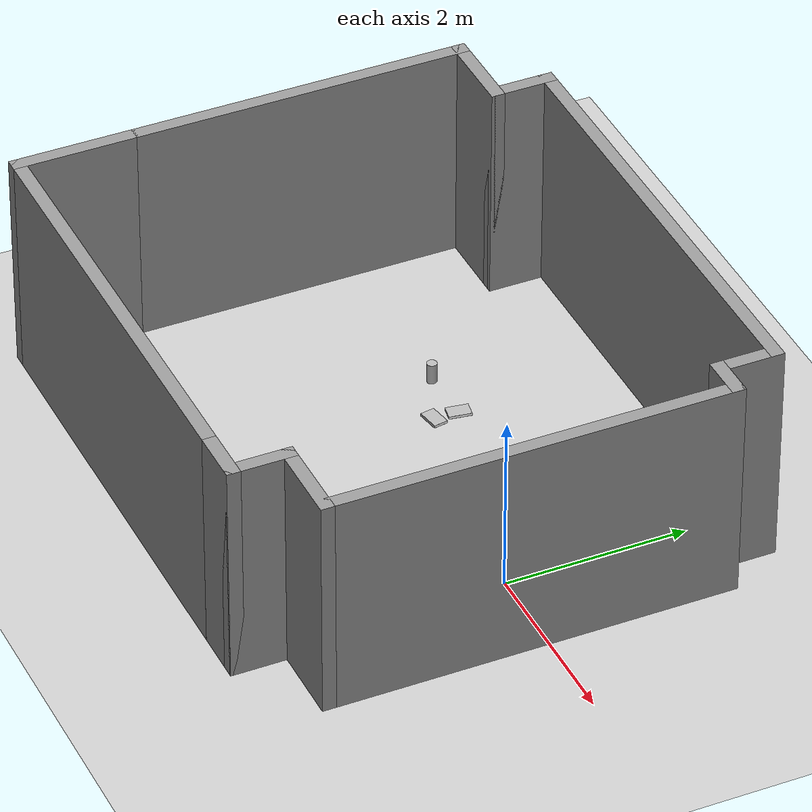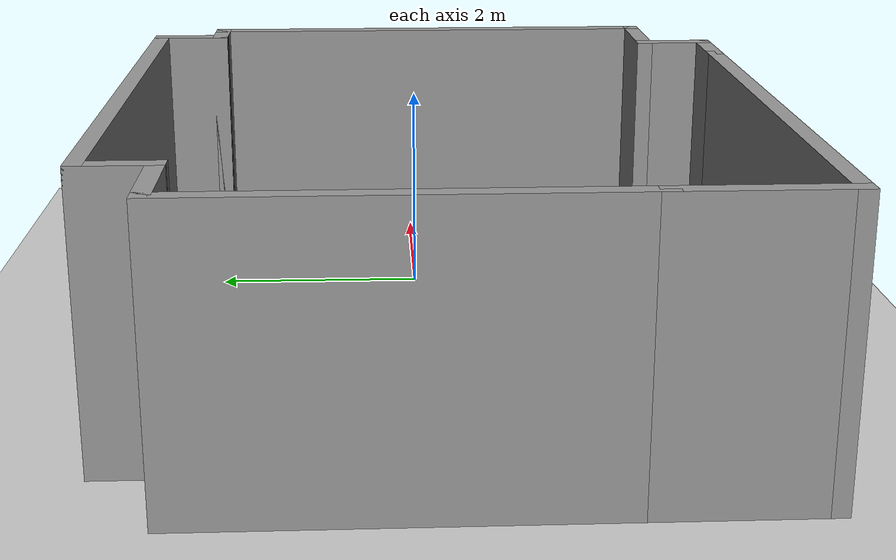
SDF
<sdf version="1.6">
 <world name="default">
  <light name="sun" type="directional">
   <pose>0 0 10 0 -0 0</pose>
   <diffuse>0.8 0.8 0.8 1</diffuse>
   <specular>0.2 0.2 0.2 1</specular>
   <attenuation>
    <range>1000</range>
    <constant>0.9</constant>
    <linear>0.01</linear>
    <quadratic>0.001</quadratic>
   </attenuation>
   <direction>-0.5 0.1 -0.9</direction>
  </light>
  <model name="ground_plane">
   <static>1</static>
   <link name="link">
    <collision name="collision">
     <geometry><plane><normal>0 0 1</normal><size>100 100</size></plane></geometry>
     <surface><friction><ode><mu>100</mu><mu2>50</mu2></ode></friction></surface>
    </collision>
    <visual name="visual">
     <cast_shadows>0</cast_shadows>
     <geometry><plane><normal>0 0 1</normal><size>100 100</size></plane></geometry>
     <material>
      <script><uri>file://media/materials/scripts/gazebo.material</uri><name>Gazebo/Grey</name></script>
     </material>
    </visual>
   </link>
  </model>
  <gravity>0 0 -10</gravity>
  <magnetic_field>6e-06 2.3e-05 -4.2e-05</magnetic_field>
  <atmosphere type="adiabatic"/>
  <physics name="default_physics" default="0" type="ode">
   <max_step_size>0.001</max_step_size>
   <real_time_factor>1</real_time_factor>
   <real_time_update_rate>1000</real_time_update_rate>
  </physics>
  <scene><ambient>0.4 0.4 0.4 1</ambient><background>0.7 0.7 0.7 1</background><shadows>1</shadows></scene>
  <audio><device>default</device></audio>
  <spherical_coordinates>
   <surface_model>EARTH_WGS84</surface_model>
   <latitude_deg>0</latitude_deg>
   <longitude_deg>0</longitude_deg>
   <elevation>0</elevation>
   <heading_deg>0</heading_deg>
  </spherical_coordinates>
  <model name="book_2">
   <link name="cover">
    <pose>0 -0.000108 0.015405 0 -0 0</pose>
    <visual name="visual">
     <geometry><box><size>0.245 0.16 0.03</size></box></geometry>
     <material>
      <script>
       <uri>model://book_2/materials/scripts</uri>
       <uri>model://book_2/materials/textures</uri>
       <name>book_2</name>
      </script>
     </material>
    </visual>
    <collision name="collision"><geometry><box><size>0.245 0.16 0.03</size></box></geometry></collision>
   </link>
   <link name="page">
    <pose>0 0.000608 0.015405 0 -0 0</pose>
    <visual name="visual">
     <geometry><box><size>0.24502 0.15862 0.028</size></box></geometry>
     <material>
      <lighting>1</lighting>
      <ambient>1 1 1 1</ambient>
      <diffuse>1 1 1 1</diffuse>
      <specular>0.01 0.01 0.01 1</specular>
      <emissive>0 0 0 1</emissive>
      <shader type="vertex"><normal_map>__default__</normal_map></shader>
     </material>
    </visual>
    <collision name="collision"><geometry><box><size>0.245 0.16 0.03</size></box></geometry></collision>
   </link>
   <static>1</static>
   <pose>-1.97657 0.410734 0.643929 -3.13995 -0.014217 1.40083</pose>
  </model>
  <model name="book_16">
   <link name="cover">
    <pose>0 -0.000108 0.015405 0 -0 0</pose>
    <visual name="visual">
     <geometry><box><size>0.245 0.16 0.03</size></box></geometry>
     <material>
      <script>
       <uri>model://book_16/materials/scripts</uri>
       <uri>model://book_16/materials/textures</uri>
       <name>book_16</name>
      </script>
     </material>
    </visual>
    <collision name="collision"><geometry><box><size>0.245 0.16 0.03</size></box></geometry></collision>
   </link>
   <link name="page">
    <pose>0 0.000608 0.015405 0 -0 0</pose>
    <visual name="visual">
     <geometry><box><size>0.24502 0.15862 0.028</size></box></geometry>
     <material>
      <lighting>1</lighting>
      <ambient>1 1 1 1</ambient>
      <diffuse>1 1 1 1</diffuse>
      <specular>0.01 0.01 0.01 1</specular>
      <emissive>0 0 0 1</emissive>
      <shader type="vertex"><normal_map>__default__</normal_map></shader>
     </material>
    </visual>
    <collision name="collision"><geometry><box><size>0.245 0.16 0.03</size></box></geometry></collision>
   </link>
   <static>1</static>
   <pose>-1.97944 0.140244 0.612635 -0.018982 0.003466 0.180604</pose>
  </model>
  <model name="beer">
   <link name="link">
    <pose>0 0 0.115 0 -0 0</pose>
    <inertial>
     <mass>0.39</mass>
     <inertia><ixx>0.00058</ixx><ixy>0</ixy><ixz>0</ixz><iyy>0.00058</iyy><iyz>0</iyz><izz>0.00019</izz></inertia>
    </inertial>
    <collision name="collision">
     <geometry><cylinder><radius>0.055</radius><length>0.23</length></cylinder></geometry>
    </collision>
    <visual name="visual">
     <geometry><cylinder><radius>0.055</radius><length>0.23</length></cylinder></geometry>
     <material>
      <script>
       <uri>model://beer/materials/scripts</uri>
       <uri>model://beer/materials/textures</uri>
       <name>Beer/Diffuse</name>
      </script>
     </material>
    </visual>
   </link>
   <pose>-2.56829 0.387122 0.610694 2e-05 6e-06 0.015303</pose>
  </model>
  <model name="Untitled">
   <pose>-2.20645 -0.180442 0 0 -0 0</pose>
   <link name="Wall_10">
    <collision name="Wall_10_Collision">
     <geometry><box><size>5.25 0.15 2.5</size></box></geometry>
     <pose>0 0 1.25 0 -0 0</pose>
    </collision>
    <visual name="Wall_10_Visual">
     <pose>0 0 1.25 0 -0 0</pose>
     <geometry><box><size>5.25 0.15 2.5</size></box></geometry>
     <material>
      <script><uri>file://media/materials/scripts/gazebo.material</uri><name>Gazebo/Grey</name></script>
      <ambient>1 1 1 1</ambient>
     </material>
     <meta><layer>0</layer></meta>
    </visual>
    <pose>0.25 2.775 0 0 -0 0</pose>
   </link>
   <link name="Wall_12">
    <collision name="Wall_12_Collision">
     <geometry><box><size>0.75 0.15 2.5</size></box></geometry>
     <pose>0 0 1.25 0 -0 0</pose>
    </collision>
    <visual name="Wall_12_Visual">
     <pose>0 0 1.25 0 -0 0</pose>
     <geometry><box><size>0.75 0.15 2.5</size></box></geometry>
     <material>
      <script><uri>file://media/materials/scripts/gazebo.material</uri><name>Gazebo/Grey</name></script>
      <ambient>1 1 1 1</ambient>
     </material>
     <meta><layer>0</layer></meta>
    </visual>
    <pose>2.8 2.475 0 0 -0 -1.5708</pose>
   </link>
   <link name="Wall_13">
    <collision name="Wall_13_Collision">
     <geometry><box><size>0.5 0.15 2.5</size></box></geometry>
     <pose>0 0 1.25 0 -0 0</pose>
    </collision>
    <visual name="Wall_13_Visual">
     <pose>0 0 1.25 0 -0 0</pose>
     <geometry><box><size>0.5 0.15 2.5</size></box></geometry>
     <material>
      <script><uri>file://media/materials/scripts/gazebo.material</uri><name>Gazebo/Grey</name></script>
      <ambient>1 1 1 1</ambient>
     </material>
     <meta><layer>0</layer></meta>
    </visual>
    <pose>2.975 2.175 0 0 -0 0</pose>
   </link>
   <link name="Wall_14">
    <collision name="Wall_14_Collision">
     <geometry><box><size>4.5 0.15 2.5</size></box></geometry>
     <pose>0 0 1.25 0 -0 0</pose>
    </collision>
    <visual name="Wall_14_Visual">
     <pose>0 0 1.25 0 -0 0</pose>
     <geometry><box><size>4.5 0.15 2.5</size></box></geometry>
     <material>
      <script><uri>file://media/materials/scripts/gazebo.material</uri><name>Gazebo/Grey</name></script>
      <ambient>1 1 1 1</ambient>
     </material>
     <meta><layer>0</layer></meta>
    </visual>
    <pose>3.15 0 0 0 -0 -1.5708</pose>
   </link>
   <link name="Wall_15">
    <collision name="Wall_15_Collision">
     <geometry><box><size>1 0.15 2.5</size></box></geometry>
     <pose>0 0 1.25 0 -0 0</pose>
    </collision>
    <visual name="Wall_15_Visual">
     <pose>0 0 1.25 0 -0 0</pose>
     <geometry><box><size>1 0.15 2.5</size></box></geometry>
     <material>
      <script><uri>file://media/materials/scripts/gazebo.material</uri><name>Gazebo/Grey</name></script>
      <ambient>1 1 1 1</ambient>
     </material>
     <meta><layer>0</layer></meta>
    </visual>
    <pose>2.725 -2.175 0 0 -0 3.14159</pose>
   </link>
   <link name="Wall_16">
    <collision name="Wall_16_Collision">
     <geometry><box><size>0.75 0.15 2.5</size></box></geometry>
     <pose>0 0 1.25 0 -0 0</pose>
    </collision>
    <visual name="Wall_16_Visual">
     <pose>0 0 1.25 0 -0 0</pose>
     <geometry><box><size>0.75 0.15 2.5</size></box></geometry>
     <material>
      <script><uri>file://media/materials/scripts/gazebo.material</uri><name>Gazebo/Grey</name></script>
      <ambient>1 1 1 1</ambient>
     </material>
     <meta><layer>0</layer></meta>
    </visual>
    <pose>2.3 -2.475 0 0 -0 -1.5708</pose>
   </link>
   <link name="Wall_17">
    <collision name="Wall_17_Collision">
     <geometry><box><size>0.75 0.15 2.5</size></box></geometry>
     <pose>0 0 1.25 0 -0 0</pose>
    </collision>
    <visual name="Wall_17_Visual">
     <pose>0 0 1.25 0 -0 0</pose>
     <geometry><box><size>0.75 0.15 2.5</size></box></geometry>
     <material>
      <script><uri>file://media/materials/scripts/gazebo.material</uri><name>Gazebo/Grey</name></script>
      <ambient>1 1 1 1</ambient>
     </material>
     <meta><layer>0</layer></meta>
    </visual>
    <pose>2 -2.775 0 0 -0 3.14159</pose>
   </link>
   <link name="Wall_3">
    <collision name="Wall_3_Collision">
     <geometry><box><size>5 0.15 2.5</size></box></geometry>
     <pose>0 0 1.25 0 -0 0</pose>
    </collision>
    <visual name="Wall_3_Visual">
     <pose>0 0 1.25 0 -0 0</pose>
     <geometry><box><size>5 0.15 2.5</size></box></geometry>
     <material>
      <script><uri>file://media/materials/scripts/gazebo.material</uri><name>Gazebo/Grey</name></script>
      <ambient>1 1 1 1</ambient>
     </material>
     <meta><layer>0</layer></meta>
    </visual>
    <pose>-0.725 -2.775 0 0 -0 3.14159</pose>
   </link>
   <link name="Wall_4">
    <collision name="Wall_4_Collision">
     <geometry><box><size>1.5 0.15 2.5</size></box></geometry>
     <pose>0 0 1.25 0 -0 0</pose>
    </collision>
    <visual name="Wall_4_Visual">
     <pose>0 0 1.25 0 -0 0</pose>
     <geometry><box><size>1.5 0.15 2.5</size></box></geometry>
     <material>
      <script><uri>file://media/materials/scripts/gazebo.material</uri><name>Gazebo/Grey</name></script>
      <ambient>1 1 1 1</ambient>
     </material>
     <meta><layer>0</layer></meta>
    </visual>
    <pose>-3.15 -2.1 0 0 -0 1.5708</pose>
   </link>
   <link name="Wall_6">
    <collision name="Wall_6_Collision">
     <geometry><box><size>3.75 0.15 2.5</size></box></geometry>
     <pose>0 0 1.25 0 -0 0</pose>
    </collision>
    <visual name="Wall_6_Visual">
     <pose>0 0 1.25 0 -0 0</pose>
     <geometry><box><size>3.75 0.15 2.5</size></box></geometry>
     <material>
      <script><uri>file://media/materials/scripts/gazebo.material</uri><name>Gazebo/Grey</name></script>
      <ambient>1 1 1 1</ambient>
     </material>
     <meta><layer>0</layer></meta>
    </visual>
    <pose>-3.15 0.375 0 0 -0 1.5708</pose>
   </link>
   <link name="Wall_7">
    <collision name="Wall_7_Collision">
     <geometry><box><size>1 0.15 2.5</size></box></geometry>
     <pose>0 0 1.25 0 -0 0</pose>
    </collision>
    <visual name="Wall_7_Visual">
     <pose>0 0 1.25 0 -0 0</pose>
     <geometry><box><size>1 0.15 2.5</size></box></geometry>
     <material>
      <script><uri>file://media/materials/scripts/gazebo.material</uri><name>Gazebo/Grey</name></script>
      <ambient>1 1 1 1</ambient>
     </material>
     <meta><layer>0</layer></meta>
    </visual>
    <pose>-2.725 2.175 0 0 -0 0</pose>
   </link>
   <link name="Wall_9">
    <collision name="Wall_9_Collision">
     <geometry><box><size>0.75 0.15 2.5</size></box></geometry>
     <pose>0 0 1.25 0 -0 0</pose>
    </collision>
    <visual name="Wall_9_Visual">
     <pose>0 0 1.25 0 -0 0</pose>
     <geometry><box><size>0.75 0.15 2.5</size></box></geometry>
     <material>
      <script><uri>file://media/materials/scripts/gazebo.material</uri><name>Gazebo/Grey</name></script>
      <ambient>1 1 1 1</ambient>
     </material>
     <meta><layer>0</layer></meta>
    </visual>
    <pose>-2.3 2.475 0 0 -0 1.5708</pose>
   </link>
   <static>1</static>
  </model>
 </world>
</sdf>
